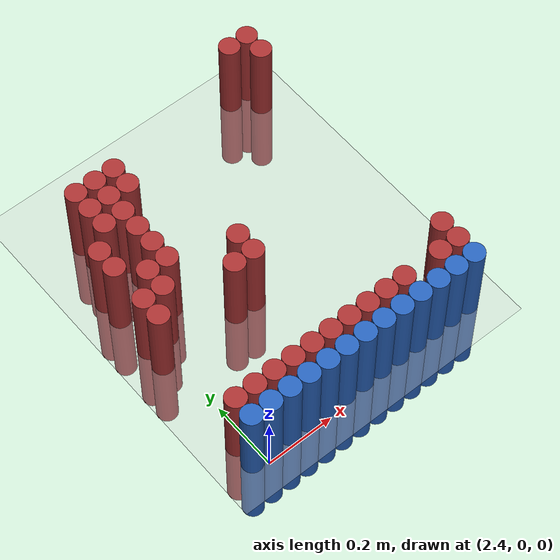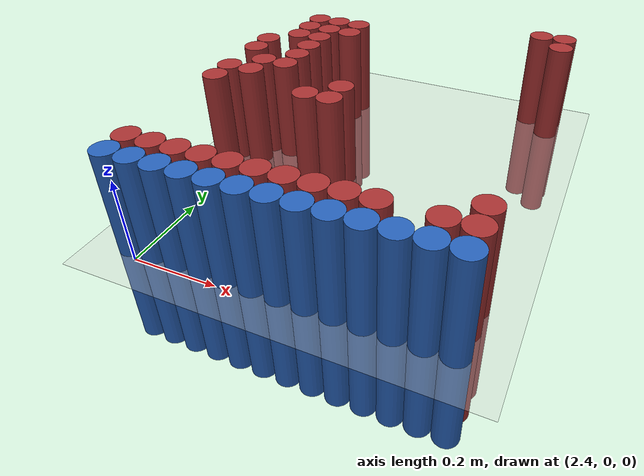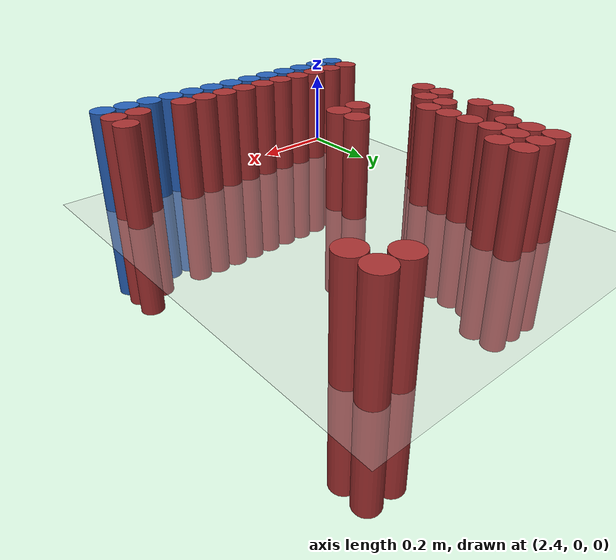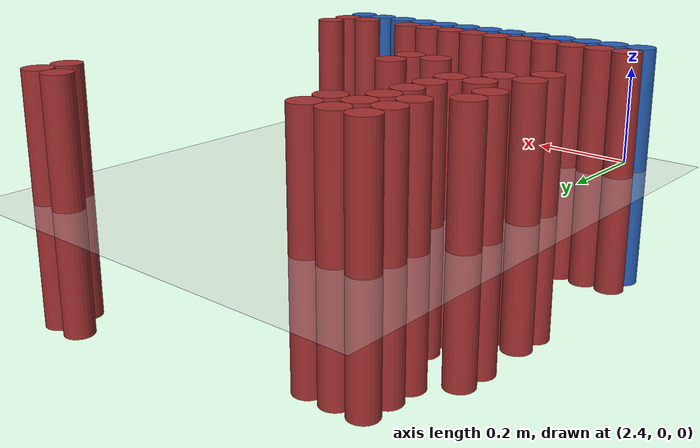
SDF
<sdf version="1.6">
 <world name="default">
  <model name="ground_plane">
   <static>1</static>
   <link name="link">
    <collision name="collision">
     <geometry><plane><normal>0 0 1</normal><size>100 100</size></plane></geometry>
     <surface><friction><ode><mu>100</mu><mu2>50</mu2></ode></friction></surface>
    </collision>
    <visual name="visual">
     <cast_shadows>0</cast_shadows>
     <geometry><plane><normal>0 0 1</normal><size>100 100</size></plane></geometry>
     <material>
      <script><uri>file://media/materials/scripts/gazebo.material</uri><name>Gazebo/Grey</name></script>
     </material>
    </visual>
   </link>
  </model>
  <model name="unit_cylinder_222">
   <static>1</static>
   <pose>3.030000 0.930000 0.000000 0.000000 0.000000 0.000000</pose>
   <link name="link">
    <inertial>
     <mass>1</mass>
     <inertia><ixx>0.145833</ixx><ixy>0</ixy><ixz>0</ixz><iyy>0.145833</iyy><iyz>0</iyz><izz>0.125</izz></inertia>
    </inertial>
    <collision name="collision">
     <geometry><cylinder><radius>0.030000</radius><length>0.5</length></cylinder></geometry>
    </collision>
    <visual name="visual">
     <geometry><cylinder><radius>0.030000</radius><length>0.5</length></cylinder></geometry>
     <material>
      <ambient>0.648000 0.192000 0.192000 1</ambient>
      <diffuse>0.648000 0.192000 0.192000 1</diffuse>
     </material>
     <material>
      <script><name>Gazebo/Grey</name><uri>file://media/materials/scripts/gazebo.material</uri></script>
     </material>
    </visual>
   </link>
  </model>
  <model name="unit_cylinder_223">
   <static>1</static>
   <pose>3.090000 0.930000 0.000000 0.000000 0.000000 0.000000</pose>
   <link name="link">
    <inertial>
     <mass>1</mass>
     <inertia><ixx>0.145833</ixx><ixy>0</ixy><ixz>0</ixz><iyy>0.145833</iyy><iyz>0</iyz><izz>0.125</izz></inertia>
    </inertial>
    <collision name="collision">
     <geometry><cylinder><radius>0.030000</radius><length>0.5</length></cylinder></geometry>
    </collision>
    <visual name="visual">
     <geometry><cylinder><radius>0.030000</radius><length>0.5</length></cylinder></geometry>
     <material>
      <ambient>0.648000 0.192000 0.192000 1</ambient>
      <diffuse>0.648000 0.192000 0.192000 1</diffuse>
     </material>
     <material>
      <script><name>Gazebo/Grey</name><uri>file://media/materials/scripts/gazebo.material</uri></script>
     </material>
    </visual>
   </link>
  </model>
  <model name="unit_cylinder_226">
   <static>1</static>
   <pose>3.090000 0.870000 0.000000 0.000000 0.000000 0.000000</pose>
   <link name="link">
    <inertial>
     <mass>1</mass>
     <inertia><ixx>0.145833</ixx><ixy>0</ixy><ixz>0</ixz><iyy>0.145833</iyy><iyz>0</iyz><izz>0.125</izz></inertia>
    </inertial>
    <collision name="collision">
     <geometry><cylinder><radius>0.030000</radius><length>0.5</length></cylinder></geometry>
    </collision>
    <visual name="visual">
     <geometry><cylinder><radius>0.030000</radius><length>0.5</length></cylinder></geometry>
     <material>
      <ambient>0.648000 0.192000 0.192000 1</ambient>
      <diffuse>0.648000 0.192000 0.192000 1</diffuse>
     </material>
     <material>
      <script><name>Gazebo/Grey</name><uri>file://media/materials/scripts/gazebo.material</uri></script>
     </material>
    </visual>
   </link>
  </model>
  <model name="unit_cylinder_234">
   <static>1</static>
   <pose>2.430000 0.810000 0.000000 0.000000 0.000000 0.000000</pose>
   <link name="link">
    <inertial>
     <mass>1</mass>
     <inertia><ixx>0.145833</ixx><ixy>0</ixy><ixz>0</ixz><iyy>0.145833</iyy><iyz>0</iyz><izz>0.125</izz></inertia>
    </inertial>
    <collision name="collision">
     <geometry><cylinder><radius>0.030000</radius><length>0.5</length></cylinder></geometry>
    </collision>
    <visual name="visual">
     <geometry><cylinder><radius>0.030000</radius><length>0.5</length></cylinder></geometry>
     <material>
      <ambient>0.648000 0.192000 0.192000 1</ambient>
      <diffuse>0.648000 0.192000 0.192000 1</diffuse>
     </material>
     <material>
      <script><name>Gazebo/Grey</name><uri>file://media/materials/scripts/gazebo.material</uri></script>
     </material>
    </visual>
   </link>
  </model>
  <model name="unit_cylinder_235">
   <static>1</static>
   <pose>2.490000 0.810000 0.000000 0.000000 0.000000 0.000000</pose>
   <link name="link">
    <inertial>
     <mass>1</mass>
     <inertia><ixx>0.145833</ixx><ixy>0</ixy><ixz>0</ixz><iyy>0.145833</iyy><iyz>0</iyz><izz>0.125</izz></inertia>
    </inertial>
    <collision name="collision">
     <geometry><cylinder><radius>0.030000</radius><length>0.5</length></cylinder></geometry>
    </collision>
    <visual name="visual">
     <geometry><cylinder><radius>0.030000</radius><length>0.5</length></cylinder></geometry>
     <material>
      <ambient>0.648000 0.192000 0.192000 1</ambient>
      <diffuse>0.648000 0.192000 0.192000 1</diffuse>
     </material>
     <material>
      <script><name>Gazebo/Grey</name><uri>file://media/materials/scripts/gazebo.material</uri></script>
     </material>
    </visual>
   </link>
  </model>
  <model name="unit_cylinder_236">
   <static>1</static>
   <pose>2.550000 0.810000 0.000000 0.000000 0.000000 0.000000</pose>
   <link name="link">
    <inertial>
     <mass>1</mass>
     <inertia><ixx>0.145833</ixx><ixy>0</ixy><ixz>0</ixz><iyy>0.145833</iyy><iyz>0</iyz><izz>0.125</izz></inertia>
    </inertial>
    <collision name="collision">
     <geometry><cylinder><radius>0.030000</radius><length>0.5</length></cylinder></geometry>
    </collision>
    <visual name="visual">
     <geometry><cylinder><radius>0.030000</radius><length>0.5</length></cylinder></geometry>
     <material>
      <ambient>0.648000 0.192000 0.192000 1</ambient>
      <diffuse>0.648000 0.192000 0.192000 1</diffuse>
     </material>
     <material>
      <script><name>Gazebo/Grey</name><uri>file://media/materials/scripts/gazebo.material</uri></script>
     </material>
    </visual>
   </link>
  </model>
  <model name="unit_cylinder_242">
   <static>1</static>
   <pose>2.430000 0.750000 0.000000 0.000000 0.000000 0.000000</pose>
   <link name="link">
    <inertial>
     <mass>1</mass>
     <inertia><ixx>0.145833</ixx><ixy>0</ixy><ixz>0</ixz><iyy>0.145833</iyy><iyz>0</iyz><izz>0.125</izz></inertia>
    </inertial>
    <collision name="collision">
     <geometry><cylinder><radius>0.030000</radius><length>0.5</length></cylinder></geometry>
    </collision>
    <visual name="visual">
     <geometry><cylinder><radius>0.030000</radius><length>0.5</length></cylinder></geometry>
     <material>
      <ambient>0.648000 0.192000 0.192000 1</ambient>
      <diffuse>0.648000 0.192000 0.192000 1</diffuse>
     </material>
     <material>
      <script><name>Gazebo/Grey</name><uri>file://media/materials/scripts/gazebo.material</uri></script>
     </material>
    </visual>
   </link>
  </model>
  <model name="unit_cylinder_243">
   <static>1</static>
   <pose>2.490000 0.750000 0.000000 0.000000 0.000000 0.000000</pose>
   <link name="link">
    <inertial>
     <mass>1</mass>
     <inertia><ixx>0.145833</ixx><ixy>0</ixy><ixz>0</ixz><iyy>0.145833</iyy><iyz>0</iyz><izz>0.125</izz></inertia>
    </inertial>
    <collision name="collision">
     <geometry><cylinder><radius>0.030000</radius><length>0.5</length></cylinder></geometry>
    </collision>
    <visual name="visual">
     <geometry><cylinder><radius>0.030000</radius><length>0.5</length></cylinder></geometry>
     <material>
      <ambient>0.648000 0.192000 0.192000 1</ambient>
      <diffuse>0.648000 0.192000 0.192000 1</diffuse>
     </material>
     <material>
      <script><name>Gazebo/Grey</name><uri>file://media/materials/scripts/gazebo.material</uri></script>
     </material>
    </visual>
   </link>
  </model>
  <model name="unit_cylinder_244">
   <static>1</static>
   <pose>2.550000 0.750000 0.000000 0.000000 0.000000 0.000000</pose>
   <link name="link">
    <inertial>
     <mass>1</mass>
     <inertia><ixx>0.145833</ixx><ixy>0</ixy><ixz>0</ixz><iyy>0.145833</iyy><iyz>0</iyz><izz>0.125</izz></inertia>
    </inertial>
    <collision name="collision">
     <geometry><cylinder><radius>0.030000</radius><length>0.5</length></cylinder></geometry>
    </collision>
    <visual name="visual">
     <geometry><cylinder><radius>0.030000</radius><length>0.5</length></cylinder></geometry>
     <material>
      <ambient>0.648000 0.192000 0.192000 1</ambient>
      <diffuse>0.648000 0.192000 0.192000 1</diffuse>
     </material>
     <material>
      <script><name>Gazebo/Grey</name><uri>file://media/materials/scripts/gazebo.material</uri></script>
     </material>
    </visual>
   </link>
  </model>
  <model name="unit_cylinder_247">
   <static>1</static>
   <pose>2.430000 0.690000 0.000000 0.000000 0.000000 0.000000</pose>
   <link name="link">
    <inertial>
     <mass>1</mass>
     <inertia><ixx>0.145833</ixx><ixy>0</ixy><ixz>0</ixz><iyy>0.145833</iyy><iyz>0</iyz><izz>0.125</izz></inertia>
    </inertial>
    <collision name="collision">
     <geometry><cylinder><radius>0.030000</radius><length>0.5</length></cylinder></geometry>
    </collision>
    <visual name="visual">
     <geometry><cylinder><radius>0.030000</radius><length>0.5</length></cylinder></geometry>
     <material>
      <ambient>0.648000 0.192000 0.192000 1</ambient>
      <diffuse>0.648000 0.192000 0.192000 1</diffuse>
     </material>
     <material>
      <script><name>Gazebo/Grey</name><uri>file://media/materials/scripts/gazebo.material</uri></script>
     </material>
    </visual>
   </link>
  </model>
  <model name="unit_cylinder_248">
   <static>1</static>
   <pose>2.490000 0.690000 0.000000 0.000000 0.000000 0.000000</pose>
   <link name="link">
    <inertial>
     <mass>1</mass>
     <inertia><ixx>0.145833</ixx><ixy>0</ixy><ixz>0</ixz><iyy>0.145833</iyy><iyz>0</iyz><izz>0.125</izz></inertia>
    </inertial>
    <collision name="collision">
     <geometry><cylinder><radius>0.030000</radius><length>0.5</length></cylinder></geometry>
    </collision>
    <visual name="visual">
     <geometry><cylinder><radius>0.030000</radius><length>0.5</length></cylinder></geometry>
     <material>
      <ambient>0.648000 0.192000 0.192000 1</ambient>
      <diffuse>0.648000 0.192000 0.192000 1</diffuse>
     </material>
     <material>
      <script><name>Gazebo/Grey</name><uri>file://media/materials/scripts/gazebo.material</uri></script>
     </material>
    </visual>
   </link>
  </model>
  <model name="unit_cylinder_250">
   <static>1</static>
   <pose>2.370000 0.630000 0.000000 0.000000 0.000000 0.000000</pose>
   <link name="link">
    <inertial>
     <mass>1</mass>
     <inertia><ixx>0.145833</ixx><ixy>0</ixy><ixz>0</ixz><iyy>0.145833</iyy><iyz>0</iyz><izz>0.125</izz></inertia>
    </inertial>
    <collision name="collision">
     <geometry><cylinder><radius>0.030000</radius><length>0.5</length></cylinder></geometry>
    </collision>
    <visual name="visual">
     <geometry><cylinder><radius>0.030000</radius><length>0.5</length></cylinder></geometry>
     <material>
      <ambient>0.648000 0.192000 0.192000 1</ambient>
      <diffuse>0.648000 0.192000 0.192000 1</diffuse>
     </material>
     <material>
      <script><name>Gazebo/Grey</name><uri>file://media/materials/scripts/gazebo.material</uri></script>
     </material>
    </visual>
   </link>
  </model>
  <model name="unit_cylinder_251">
   <static>1</static>
   <pose>2.490000 0.630000 0.000000 0.000000 0.000000 0.000000</pose>
   <link name="link">
    <inertial>
     <mass>1</mass>
     <inertia><ixx>0.145833</ixx><ixy>0</ixy><ixz>0</ixz><iyy>0.145833</iyy><iyz>0</iyz><izz>0.125</izz></inertia>
    </inertial>
    <collision name="collision">
     <geometry><cylinder><radius>0.030000</radius><length>0.5</length></cylinder></geometry>
    </collision>
    <visual name="visual">
     <geometry><cylinder><radius>0.030000</radius><length>0.5</length></cylinder></geometry>
     <material>
      <ambient>0.648000 0.192000 0.192000 1</ambient>
      <diffuse>0.648000 0.192000 0.192000 1</diffuse>
     </material>
     <material>
      <script><name>Gazebo/Grey</name><uri>file://media/materials/scripts/gazebo.material</uri></script>
     </material>
    </visual>
   </link>
  </model>
  <model name="unit_cylinder_254">
   <static>1</static>
   <pose>2.370000 0.570000 0.000000 0.000000 0.000000 0.000000</pose>
   <link name="link">
    <inertial>
     <mass>1</mass>
     <inertia><ixx>0.145833</ixx><ixy>0</ixy><ixz>0</ixz><iyy>0.145833</iyy><iyz>0</iyz><izz>0.125</izz></inertia>
    </inertial>
    <collision name="collision">
     <geometry><cylinder><radius>0.030000</radius><length>0.5</length></cylinder></geometry>
    </collision>
    <visual name="visual">
     <geometry><cylinder><radius>0.030000</radius><length>0.5</length></cylinder></geometry>
     <material>
      <ambient>0.648000 0.192000 0.192000 1</ambient>
      <diffuse>0.648000 0.192000 0.192000 1</diffuse>
     </material>
     <material>
      <script><name>Gazebo/Grey</name><uri>file://media/materials/scripts/gazebo.material</uri></script>
     </material>
    </visual>
   </link>
  </model>
  <model name="unit_cylinder_255">
   <static>1</static>
   <pose>2.490000 0.570000 0.000000 0.000000 0.000000 0.000000</pose>
   <link name="link">
    <inertial>
     <mass>1</mass>
     <inertia><ixx>0.145833</ixx><ixy>0</ixy><ixz>0</ixz><iyy>0.145833</iyy><iyz>0</iyz><izz>0.125</izz></inertia>
    </inertial>
    <collision name="collision">
     <geometry><cylinder><radius>0.030000</radius><length>0.5</length></cylinder></geometry>
    </collision>
    <visual name="visual">
     <geometry><cylinder><radius>0.030000</radius><length>0.5</length></cylinder></geometry>
     <material>
      <ambient>0.648000 0.192000 0.192000 1</ambient>
      <diffuse>0.648000 0.192000 0.192000 1</diffuse>
     </material>
     <material>
      <script><name>Gazebo/Grey</name><uri>file://media/materials/scripts/gazebo.material</uri></script>
     </material>
    </visual>
   </link>
  </model>
  <model name="unit_cylinder_265">
   <static>1</static>
   <pose>2.430000 0.510000 0.000000 0.000000 0.000000 0.000000</pose>
   <link name="link">
    <inertial>
     <mass>1</mass>
     <inertia><ixx>0.145833</ixx><ixy>0</ixy><ixz>0</ixz><iyy>0.145833</iyy><iyz>0</iyz><izz>0.125</izz></inertia>
    </inertial>
    <collision name="collision">
     <geometry><cylinder><radius>0.030000</radius><length>0.5</length></cylinder></geometry>
    </collision>
    <visual name="visual">
     <geometry><cylinder><radius>0.030000</radius><length>0.5</length></cylinder></geometry>
     <material>
      <ambient>0.648000 0.192000 0.192000 1</ambient>
      <diffuse>0.648000 0.192000 0.192000 1</diffuse>
     </material>
     <material>
      <script><name>Gazebo/Grey</name><uri>file://media/materials/scripts/gazebo.material</uri></script>
     </material>
    </visual>
   </link>
  </model>
  <model name="unit_cylinder_266">
   <static>1</static>
   <pose>2.490000 0.510000 0.000000 0.000000 0.000000 0.000000</pose>
   <link name="link">
    <inertial>
     <mass>1</mass>
     <inertia><ixx>0.145833</ixx><ixy>0</ixy><ixz>0</ixz><iyy>0.145833</iyy><iyz>0</iyz><izz>0.125</izz></inertia>
    </inertial>
    <collision name="collision">
     <geometry><cylinder><radius>0.030000</radius><length>0.5</length></cylinder></geometry>
    </collision>
    <visual name="visual">
     <geometry><cylinder><radius>0.030000</radius><length>0.5</length></cylinder></geometry>
     <material>
      <ambient>0.648000 0.192000 0.192000 1</ambient>
      <diffuse>0.648000 0.192000 0.192000 1</diffuse>
     </material>
     <material>
      <script><name>Gazebo/Grey</name><uri>file://media/materials/scripts/gazebo.material</uri></script>
     </material>
    </visual>
   </link>
  </model>
  <model name="unit_cylinder_272">
   <static>1</static>
   <pose>2.370000 0.450000 0.000000 0.000000 0.000000 0.000000</pose>
   <link name="link">
    <inertial>
     <mass>1</mass>
     <inertia><ixx>0.145833</ixx><ixy>0</ixy><ixz>0</ixz><iyy>0.145833</iyy><iyz>0</iyz><izz>0.125</izz></inertia>
    </inertial>
    <collision name="collision">
     <geometry><cylinder><radius>0.030000</radius><length>0.5</length></cylinder></geometry>
    </collision>
    <visual name="visual">
     <geometry><cylinder><radius>0.030000</radius><length>0.5</length></cylinder></geometry>
     <material>
      <ambient>0.648000 0.192000 0.192000 1</ambient>
      <diffuse>0.648000 0.192000 0.192000 1</diffuse>
     </material>
     <material>
      <script><name>Gazebo/Grey</name><uri>file://media/materials/scripts/gazebo.material</uri></script>
     </material>
    </visual>
   </link>
  </model>
  <model name="unit_cylinder_273">
   <static>1</static>
   <pose>2.430000 0.450000 0.000000 0.000000 0.000000 0.000000</pose>
   <link name="link">
    <inertial>
     <mass>1</mass>
     <inertia><ixx>0.145833</ixx><ixy>0</ixy><ixz>0</ixz><iyy>0.145833</iyy><iyz>0</iyz><izz>0.125</izz></inertia>
    </inertial>
    <collision name="collision">
     <geometry><cylinder><radius>0.030000</radius><length>0.5</length></cylinder></geometry>
    </collision>
    <visual name="visual">
     <geometry><cylinder><radius>0.030000</radius><length>0.5</length></cylinder></geometry>
     <material>
      <ambient>0.648000 0.192000 0.192000 1</ambient>
      <diffuse>0.648000 0.192000 0.192000 1</diffuse>
     </material>
     <material>
      <script><name>Gazebo/Grey</name><uri>file://media/materials/scripts/gazebo.material</uri></script>
     </material>
    </visual>
   </link>
  </model>
  <model name="unit_cylinder_274">
   <static>1</static>
   <pose>2.670000 0.450000 0.000000 0.000000 0.000000 0.000000</pose>
   <link name="link">
    <inertial>
     <mass>1</mass>
     <inertia><ixx>0.145833</ixx><ixy>0</ixy><ixz>0</ixz><iyy>0.145833</iyy><iyz>0</iyz><izz>0.125</izz></inertia>
    </inertial>
    <collision name="collision">
     <geometry><cylinder><radius>0.030000</radius><length>0.5</length></cylinder></geometry>
    </collision>
    <visual name="visual">
     <geometry><cylinder><radius>0.030000</radius><length>0.5</length></cylinder></geometry>
     <material>
      <ambient>0.648000 0.192000 0.192000 1</ambient>
      <diffuse>0.648000 0.192000 0.192000 1</diffuse>
     </material>
     <material>
      <script><name>Gazebo/Grey</name><uri>file://media/materials/scripts/gazebo.material</uri></script>
     </material>
    </visual>
   </link>
  </model>
  <model name="unit_cylinder_277">
   <static>1</static>
   <pose>2.370000 0.390000 0.000000 0.000000 0.000000 0.000000</pose>
   <link name="link">
    <inertial>
     <mass>1</mass>
     <inertia><ixx>0.145833</ixx><ixy>0</ixy><ixz>0</ixz><iyy>0.145833</iyy><iyz>0</iyz><izz>0.125</izz></inertia>
    </inertial>
    <collision name="collision">
     <geometry><cylinder><radius>0.030000</radius><length>0.5</length></cylinder></geometry>
    </collision>
    <visual name="visual">
     <geometry><cylinder><radius>0.030000</radius><length>0.5</length></cylinder></geometry>
     <material>
      <ambient>0.648000 0.192000 0.192000 1</ambient>
      <diffuse>0.648000 0.192000 0.192000 1</diffuse>
     </material>
     <material>
      <script><name>Gazebo/Grey</name><uri>file://media/materials/scripts/gazebo.material</uri></script>
     </material>
    </visual>
   </link>
  </model>
  <model name="unit_cylinder_278">
   <static>1</static>
   <pose>2.610000 0.390000 0.000000 0.000000 0.000000 0.000000</pose>
   <link name="link">
    <inertial>
     <mass>1</mass>
     <inertia><ixx>0.145833</ixx><ixy>0</ixy><ixz>0</ixz><iyy>0.145833</iyy><iyz>0</iyz><izz>0.125</izz></inertia>
    </inertial>
    <collision name="collision">
     <geometry><cylinder><radius>0.030000</radius><length>0.5</length></cylinder></geometry>
    </collision>
    <visual name="visual">
     <geometry><cylinder><radius>0.030000</radius><length>0.5</length></cylinder></geometry>
     <material>
      <ambient>0.648000 0.192000 0.192000 1</ambient>
      <diffuse>0.648000 0.192000 0.192000 1</diffuse>
     </material>
     <material>
      <script><name>Gazebo/Grey</name><uri>file://media/materials/scripts/gazebo.material</uri></script>
     </material>
    </visual>
   </link>
  </model>
  <model name="unit_cylinder_279">
   <static>1</static>
   <pose>2.670000 0.390000 0.000000 0.000000 0.000000 0.000000</pose>
   <link name="link">
    <inertial>
     <mass>1</mass>
     <inertia><ixx>0.145833</ixx><ixy>0</ixy><ixz>0</ixz><iyy>0.145833</iyy><iyz>0</iyz><izz>0.125</izz></inertia>
    </inertial>
    <collision name="collision">
     <geometry><cylinder><radius>0.030000</radius><length>0.5</length></cylinder></geometry>
    </collision>
    <visual name="visual">
     <geometry><cylinder><radius>0.030000</radius><length>0.5</length></cylinder></geometry>
     <material>
      <ambient>0.648000 0.192000 0.192000 1</ambient>
      <diffuse>0.648000 0.192000 0.192000 1</diffuse>
     </material>
     <material>
      <script><name>Gazebo/Grey</name><uri>file://media/materials/scripts/gazebo.material</uri></script>
     </material>
    </visual>
   </link>
  </model>
  <model name="unit_cylinder_289">
   <static>1</static>
   <pose>3.090000 0.150000 0.000000 0.000000 0.000000 0.000000</pose>
   <link name="link">
    <inertial>
     <mass>1</mass>
     <inertia><ixx>0.145833</ixx><ixy>0</ixy><ixz>0</ixz><iyy>0.145833</iyy><iyz>0</iyz><izz>0.125</izz></inertia>
    </inertial>
    <collision name="collision">
     <geometry><cylinder><radius>0.030000</radius><length>0.5</length></cylinder></geometry>
    </collision>
    <visual name="visual">
     <geometry><cylinder><radius>0.030000</radius><length>0.5</length></cylinder></geometry>
     <material>
      <ambient>0.648000 0.192000 0.192000 1</ambient>
      <diffuse>0.648000 0.192000 0.192000 1</diffuse>
     </material>
     <material>
      <script><name>Gazebo/Grey</name><uri>file://media/materials/scripts/gazebo.material</uri></script>
     </material>
    </visual>
   </link>
  </model>
  <model name="unit_cylinder_297">
   <static>1</static>
   <pose>2.370000 0.090000 0.000000 0.000000 0.000000 0.000000</pose>
   <link name="link">
    <inertial>
     <mass>1</mass>
     <inertia><ixx>0.145833</ixx><ixy>0</ixy><ixz>0</ixz><iyy>0.145833</iyy><iyz>0</iyz><izz>0.125</izz></inertia>
    </inertial>
    <collision name="collision">
     <geometry><cylinder><radius>0.030000</radius><length>0.5</length></cylinder></geometry>
    </collision>
    <visual name="visual">
     <geometry><cylinder><radius>0.030000</radius><length>0.5</length></cylinder></geometry>
     <material>
      <ambient>0.648000 0.192000 0.192000 1</ambient>
      <diffuse>0.648000 0.192000 0.192000 1</diffuse>
     </material>
     <material>
      <script><name>Gazebo/Grey</name><uri>file://media/materials/scripts/gazebo.material</uri></script>
     </material>
    </visual>
   </link>
  </model>
  <model name="unit_cylinder_298">
   <static>1</static>
   <pose>2.430000 0.090000 0.000000 0.000000 0.000000 0.000000</pose>
   <link name="link">
    <inertial>
     <mass>1</mass>
     <inertia><ixx>0.145833</ixx><ixy>0</ixy><ixz>0</ixz><iyy>0.145833</iyy><iyz>0</iyz><izz>0.125</izz></inertia>
    </inertial>
    <collision name="collision">
     <geometry><cylinder><radius>0.030000</radius><length>0.5</length></cylinder></geometry>
    </collision>
    <visual name="visual">
     <geometry><cylinder><radius>0.030000</radius><length>0.5</length></cylinder></geometry>
     <material>
      <ambient>0.648000 0.192000 0.192000 1</ambient>
      <diffuse>0.648000 0.192000 0.192000 1</diffuse>
     </material>
     <material>
      <script><name>Gazebo/Grey</name><uri>file://media/materials/scripts/gazebo.material</uri></script>
     </material>
    </visual>
   </link>
  </model>
  <model name="unit_cylinder_299">
   <static>1</static>
   <pose>2.490000 0.090000 0.000000 0.000000 0.000000 0.000000</pose>
   <link name="link">
    <inertial>
     <mass>1</mass>
     <inertia><ixx>0.145833</ixx><ixy>0</ixy><ixz>0</ixz><iyy>0.145833</iyy><iyz>0</iyz><izz>0.125</izz></inertia>
    </inertial>
    <collision name="collision">
     <geometry><cylinder><radius>0.030000</radius><length>0.5</length></cylinder></geometry>
    </collision>
    <visual name="visual">
     <geometry><cylinder><radius>0.030000</radius><length>0.5</length></cylinder></geometry>
     <material>
      <ambient>0.648000 0.192000 0.192000 1</ambient>
      <diffuse>0.648000 0.192000 0.192000 1</diffuse>
     </material>
     <material>
      <script><name>Gazebo/Grey</name><uri>file://media/materials/scripts/gazebo.material</uri></script>
     </material>
    </visual>
   </link>
  </model>
  <model name="unit_cylinder_300">
   <static>1</static>
   <pose>2.550000 0.090000 0.000000 0.000000 0.000000 0.000000</pose>
   <link name="link">
    <inertial>
     <mass>1</mass>
     <inertia><ixx>0.145833</ixx><ixy>0</ixy><ixz>0</ixz><iyy>0.145833</iyy><iyz>0</iyz><izz>0.125</izz></inertia>
    </inertial>
    <collision name="collision">
     <geometry><cylinder><radius>0.030000</radius><length>0.5</length></cylinder></geometry>
    </collision>
    <visual name="visual">
     <geometry><cylinder><radius>0.030000</radius><length>0.5</length></cylinder></geometry>
     <material>
      <ambient>0.648000 0.192000 0.192000 1</ambient>
      <diffuse>0.648000 0.192000 0.192000 1</diffuse>
     </material>
     <material>
      <script><name>Gazebo/Grey</name><uri>file://media/materials/scripts/gazebo.material</uri></script>
     </material>
    </visual>
   </link>
  </model>
  <model name="unit_cylinder_301">
   <static>1</static>
   <pose>2.610000 0.090000 0.000000 0.000000 0.000000 0.000000</pose>
   <link name="link">
    <inertial>
     <mass>1</mass>
     <inertia><ixx>0.145833</ixx><ixy>0</ixy><ixz>0</ixz><iyy>0.145833</iyy><iyz>0</iyz><izz>0.125</izz></inertia>
    </inertial>
    <collision name="collision">
     <geometry><cylinder><radius>0.030000</radius><length>0.5</length></cylinder></geometry>
    </collision>
    <visual name="visual">
     <geometry><cylinder><radius>0.030000</radius><length>0.5</length></cylinder></geometry>
     <material>
      <ambient>0.648000 0.192000 0.192000 1</ambient>
      <diffuse>0.648000 0.192000 0.192000 1</diffuse>
     </material>
     <material>
      <script><name>Gazebo/Grey</name><uri>file://media/materials/scripts/gazebo.material</uri></script>
     </material>
    </visual>
   </link>
  </model>
  <model name="unit_cylinder_302">
   <static>1</static>
   <pose>2.670000 0.090000 0.000000 0.000000 0.000000 0.000000</pose>
   <link name="link">
    <inertial>
     <mass>1</mass>
     <inertia><ixx>0.145833</ixx><ixy>0</ixy><ixz>0</ixz><iyy>0.145833</iyy><iyz>0</iyz><izz>0.125</izz></inertia>
    </inertial>
    <collision name="collision">
     <geometry><cylinder><radius>0.030000</radius><length>0.5</length></cylinder></geometry>
    </collision>
    <visual name="visual">
     <geometry><cylinder><radius>0.030000</radius><length>0.5</length></cylinder></geometry>
     <material>
      <ambient>0.648000 0.192000 0.192000 1</ambient>
      <diffuse>0.648000 0.192000 0.192000 1</diffuse>
     </material>
     <material>
      <script><name>Gazebo/Grey</name><uri>file://media/materials/scripts/gazebo.material</uri></script>
     </material>
    </visual>
   </link>
  </model>
  <model name="unit_cylinder_303">
   <static>1</static>
   <pose>2.730000 0.090000 0.000000 0.000000 0.000000 0.000000</pose>
   <link name="link">
    <inertial>
     <mass>1</mass>
     <inertia><ixx>0.145833</ixx><ixy>0</ixy><ixz>0</ixz><iyy>0.145833</iyy><iyz>0</iyz><izz>0.125</izz></inertia>
    </inertial>
    <collision name="collision">
     <geometry><cylinder><radius>0.030000</radius><length>0.5</length></cylinder></geometry>
    </collision>
    <visual name="visual">
     <geometry><cylinder><radius>0.030000</radius><length>0.5</length></cylinder></geometry>
     <material>
      <ambient>0.648000 0.192000 0.192000 1</ambient>
      <diffuse>0.648000 0.192000 0.192000 1</diffuse>
     </material>
     <material>
      <script><name>Gazebo/Grey</name><uri>file://media/materials/scripts/gazebo.material</uri></script>
     </material>
    </visual>
   </link>
  </model>
  <model name="unit_cylinder_304">
   <static>1</static>
   <pose>2.790000 0.090000 0.000000 0.000000 0.000000 0.000000</pose>
   <link name="link">
    <inertial>
     <mass>1</mass>
     <inertia><ixx>0.145833</ixx><ixy>0</ixy><ixz>0</ixz><iyy>0.145833</iyy><iyz>0</iyz><izz>0.125</izz></inertia>
    </inertial>
    <collision name="collision">
     <geometry><cylinder><radius>0.030000</radius><length>0.5</length></cylinder></geometry>
    </collision>
    <visual name="visual">
     <geometry><cylinder><radius>0.030000</radius><length>0.5</length></cylinder></geometry>
     <material>
      <ambient>0.648000 0.192000 0.192000 1</ambient>
      <diffuse>0.648000 0.192000 0.192000 1</diffuse>
     </material>
     <material>
      <script><name>Gazebo/Grey</name><uri>file://media/materials/scripts/gazebo.material</uri></script>
     </material>
    </visual>
   </link>
  </model>
  <model name="unit_cylinder_305">
   <static>1</static>
   <pose>2.850000 0.090000 0.000000 0.000000 0.000000 0.000000</pose>
   <link name="link">
    <inertial>
     <mass>1</mass>
     <inertia><ixx>0.145833</ixx><ixy>0</ixy><ixz>0</ixz><iyy>0.145833</iyy><iyz>0</iyz><izz>0.125</izz></inertia>
    </inertial>
    <collision name="collision">
     <geometry><cylinder><radius>0.030000</radius><length>0.5</length></cylinder></geometry>
    </collision>
    <visual name="visual">
     <geometry><cylinder><radius>0.030000</radius><length>0.5</length></cylinder></geometry>
     <material>
      <ambient>0.648000 0.192000 0.192000 1</ambient>
      <diffuse>0.648000 0.192000 0.192000 1</diffuse>
     </material>
     <material>
      <script><name>Gazebo/Grey</name><uri>file://media/materials/scripts/gazebo.material</uri></script>
     </material>
    </visual>
   </link>
  </model>
  <model name="unit_cylinder_306">
   <static>1</static>
   <pose>2.910000 0.090000 0.000000 0.000000 0.000000 0.000000</pose>
   <link name="link">
    <inertial>
     <mass>1</mass>
     <inertia><ixx>0.145833</ixx><ixy>0</ixy><ixz>0</ixz><iyy>0.145833</iyy><iyz>0</iyz><izz>0.125</izz></inertia>
    </inertial>
    <collision name="collision">
     <geometry><cylinder><radius>0.030000</radius><length>0.5</length></cylinder></geometry>
    </collision>
    <visual name="visual">
     <geometry><cylinder><radius>0.030000</radius><length>0.5</length></cylinder></geometry>
     <material>
      <ambient>0.648000 0.192000 0.192000 1</ambient>
      <diffuse>0.648000 0.192000 0.192000 1</diffuse>
     </material>
     <material>
      <script><name>Gazebo/Grey</name><uri>file://media/materials/scripts/gazebo.material</uri></script>
     </material>
    </visual>
   </link>
  </model>
  <model name="unit_cylinder_307">
   <static>1</static>
   <pose>3.030000 0.090000 0.000000 0.000000 0.000000 0.000000</pose>
   <link name="link">
    <inertial>
     <mass>1</mass>
     <inertia><ixx>0.145833</ixx><ixy>0</ixy><ixz>0</ixz><iyy>0.145833</iyy><iyz>0</iyz><izz>0.125</izz></inertia>
    </inertial>
    <collision name="collision">
     <geometry><cylinder><radius>0.030000</radius><length>0.5</length></cylinder></geometry>
    </collision>
    <visual name="visual">
     <geometry><cylinder><radius>0.030000</radius><length>0.5</length></cylinder></geometry>
     <material>
      <ambient>0.648000 0.192000 0.192000 1</ambient>
      <diffuse>0.648000 0.192000 0.192000 1</diffuse>
     </material>
     <material>
      <script><name>Gazebo/Grey</name><uri>file://media/materials/scripts/gazebo.material</uri></script>
     </material>
    </visual>
   </link>
  </model>
  <model name="unit_cylinder_308">
   <static>1</static>
   <pose>3.090000 0.090000 0.000000 0.000000 0.000000 0.000000</pose>
   <link name="link">
    <inertial>
     <mass>1</mass>
     <inertia><ixx>0.145833</ixx><ixy>0</ixy><ixz>0</ixz><iyy>0.145833</iyy><iyz>0</iyz><izz>0.125</izz></inertia>
    </inertial>
    <collision name="collision">
     <geometry><cylinder><radius>0.030000</radius><length>0.5</length></cylinder></geometry>
    </collision>
    <visual name="visual">
     <geometry><cylinder><radius>0.030000</radius><length>0.5</length></cylinder></geometry>
     <material>
      <ambient>0.648000 0.192000 0.192000 1</ambient>
      <diffuse>0.648000 0.192000 0.192000 1</diffuse>
     </material>
     <material>
      <script><name>Gazebo/Grey</name><uri>file://media/materials/scripts/gazebo.material</uri></script>
     </material>
    </visual>
   </link>
  </model>
  <model name="unit_cylinder_322">
   <static>1</static>
   <pose>2.370000 0.030000 0.000000 0.000000 0.000000 0.000000</pose>
   <link name="link">
    <inertial>
     <mass>1</mass>
     <inertia><ixx>0.145833</ixx><ixy>0</ixy><ixz>0</ixz><iyy>0.145833</iyy><iyz>0</iyz><izz>0.125</izz></inertia>
    </inertial>
    <collision name="collision">
     <geometry><cylinder><radius>0.030000</radius><length>0.5</length></cylinder></geometry>
    </collision>
    <visual name="visual">
     <geometry><cylinder><radius>0.030000</radius><length>0.5</length></cylinder></geometry>
     <material>
      <ambient>0.152000 0.379000 0.720000 1</ambient>
      <diffuse>0.152000 0.379000 0.720000 1</diffuse>
     </material>
     <material>
      <script><name>Gazebo/Grey</name><uri>file://media/materials/scripts/gazebo.material</uri></script>
     </material>
    </visual>
   </link>
  </model>
  <model name="unit_cylinder_323">
   <static>1</static>
   <pose>2.430000 0.030000 0.000000 0.000000 0.000000 0.000000</pose>
   <link name="link">
    <inertial>
     <mass>1</mass>
     <inertia><ixx>0.145833</ixx><ixy>0</ixy><ixz>0</ixz><iyy>0.145833</iyy><iyz>0</iyz><izz>0.125</izz></inertia>
    </inertial>
    <collision name="collision">
     <geometry><cylinder><radius>0.030000</radius><length>0.5</length></cylinder></geometry>
    </collision>
    <visual name="visual">
     <geometry><cylinder><radius>0.030000</radius><length>0.5</length></cylinder></geometry>
     <material>
      <ambient>0.152000 0.379000 0.720000 1</ambient>
      <diffuse>0.152000 0.379000 0.720000 1</diffuse>
     </material>
     <material>
      <script><name>Gazebo/Grey</name><uri>file://media/materials/scripts/gazebo.material</uri></script>
     </material>
    </visual>
   </link>
  </model>
  <model name="unit_cylinder_324">
   <static>1</static>
   <pose>2.490000 0.030000 0.000000 0.000000 0.000000 0.000000</pose>
   <link name="link">
    <inertial>
     <mass>1</mass>
     <inertia><ixx>0.145833</ixx><ixy>0</ixy><ixz>0</ixz><iyy>0.145833</iyy><iyz>0</iyz><izz>0.125</izz></inertia>
    </inertial>
    <collision name="collision">
     <geometry><cylinder><radius>0.030000</radius><length>0.5</length></cylinder></geometry>
    </collision>
    <visual name="visual">
     <geometry><cylinder><radius>0.030000</radius><length>0.5</length></cylinder></geometry>
     <material>
      <ambient>0.152000 0.379000 0.720000 1</ambient>
      <diffuse>0.152000 0.379000 0.720000 1</diffuse>
     </material>
     <material>
      <script><name>Gazebo/Grey</name><uri>file://media/materials/scripts/gazebo.material</uri></script>
     </material>
    </visual>
   </link>
  </model>
  <model name="unit_cylinder_325">
   <static>1</static>
   <pose>2.550000 0.030000 0.000000 0.000000 0.000000 0.000000</pose>
   <link name="link">
    <inertial>
     <mass>1</mass>
     <inertia><ixx>0.145833</ixx><ixy>0</ixy><ixz>0</ixz><iyy>0.145833</iyy><iyz>0</iyz><izz>0.125</izz></inertia>
    </inertial>
    <collision name="collision">
     <geometry><cylinder><radius>0.030000</radius><length>0.5</length></cylinder></geometry>
    </collision>
    <visual name="visual">
     <geometry><cylinder><radius>0.030000</radius><length>0.5</length></cylinder></geometry>
     <material>
      <ambient>0.152000 0.379000 0.720000 1</ambient>
      <diffuse>0.152000 0.379000 0.720000 1</diffuse>
     </material>
     <material>
      <script><name>Gazebo/Grey</name><uri>file://media/materials/scripts/gazebo.material</uri></script>
     </material>
    </visual>
   </link>
  </model>
  <model name="unit_cylinder_326">
   <static>1</static>
   <pose>2.610000 0.030000 0.000000 0.000000 0.000000 0.000000</pose>
   <link name="link">
    <inertial>
     <mass>1</mass>
     <inertia><ixx>0.145833</ixx><ixy>0</ixy><ixz>0</ixz><iyy>0.145833</iyy><iyz>0</iyz><izz>0.125</izz></inertia>
    </inertial>
    <collision name="collision">
     <geometry><cylinder><radius>0.030000</radius><length>0.5</length></cylinder></geometry>
    </collision>
    <visual name="visual">
     <geometry><cylinder><radius>0.030000</radius><length>0.5</length></cylinder></geometry>
     <material>
      <ambient>0.152000 0.379000 0.720000 1</ambient>
      <diffuse>0.152000 0.379000 0.720000 1</diffuse>
     </material>
     <material>
      <script><name>Gazebo/Grey</name><uri>file://media/materials/scripts/gazebo.material</uri></script>
     </material>
    </visual>
   </link>
  </model>
  <model name="unit_cylinder_327">
   <static>1</static>
   <pose>2.670000 0.030000 0.000000 0.000000 0.000000 0.000000</pose>
   <link name="link">
    <inertial>
     <mass>1</mass>
     <inertia><ixx>0.145833</ixx><ixy>0</ixy><ixz>0</ixz><iyy>0.145833</iyy><iyz>0</iyz><izz>0.125</izz></inertia>
    </inertial>
    <collision name="collision">
     <geometry><cylinder><radius>0.030000</radius><length>0.5</length></cylinder></geometry>
    </collision>
    <visual name="visual">
     <geometry><cylinder><radius>0.030000</radius><length>0.5</length></cylinder></geometry>
     <material>
      <ambient>0.152000 0.379000 0.720000 1</ambient>
      <diffuse>0.152000 0.379000 0.720000 1</diffuse>
     </material>
     <material>
      <script><name>Gazebo/Grey</name><uri>file://media/materials/scripts/gazebo.material</uri></script>
     </material>
    </visual>
   </link>
  </model>
  <model name="unit_cylinder_328">
   <static>1</static>
   <pose>2.730000 0.030000 0.000000 0.000000 0.000000 0.000000</pose>
   <link name="link">
    <inertial>
     <mass>1</mass>
     <inertia><ixx>0.145833</ixx><ixy>0</ixy><ixz>0</ixz><iyy>0.145833</iyy><iyz>0</iyz><izz>0.125</izz></inertia>
    </inertial>
    <collision name="collision">
     <geometry><cylinder><radius>0.030000</radius><length>0.5</length></cylinder></geometry>
    </collision>
    <visual name="visual">
     <geometry><cylinder><radius>0.030000</radius><length>0.5</length></cylinder></geometry>
     <material>
      <ambient>0.152000 0.379000 0.720000 1</ambient>
      <diffuse>0.152000 0.379000 0.720000 1</diffuse>
     </material>
     <material>
      <script><name>Gazebo/Grey</name><uri>file://media/materials/scripts/gazebo.material</uri></script>
     </material>
    </visual>
   </link>
  </model>
  <model name="unit_cylinder_329">
   <static>1</static>
   <pose>2.790000 0.030000 0.000000 0.000000 0.000000 0.000000</pose>
   <link name="link">
    <inertial>
     <mass>1</mass>
     <inertia><ixx>0.145833</ixx><ixy>0</ixy><ixz>0</ixz><iyy>0.145833</iyy><iyz>0</iyz><izz>0.125</izz></inertia>
    </inertial>
    <collision name="collision">
     <geometry><cylinder><radius>0.030000</radius><length>0.5</length></cylinder></geometry>
    </collision>
    <visual name="visual">
     <geometry><cylinder><radius>0.030000</radius><length>0.5</length></cylinder></geometry>
     <material>
      <ambient>0.152000 0.379000 0.720000 1</ambient>
      <diffuse>0.152000 0.379000 0.720000 1</diffuse>
     </material>
     <material>
      <script><name>Gazebo/Grey</name><uri>file://media/materials/scripts/gazebo.material</uri></script>
     </material>
    </visual>
   </link>
  </model>
  <model name="unit_cylinder_330">
   <static>1</static>
   <pose>2.850000 0.030000 0.000000 0.000000 0.000000 0.000000</pose>
   <link name="link">
    <inertial>
     <mass>1</mass>
     <inertia><ixx>0.145833</ixx><ixy>0</ixy><ixz>0</ixz><iyy>0.145833</iyy><iyz>0</iyz><izz>0.125</izz></inertia>
    </inertial>
    <collision name="collision">
     <geometry><cylinder><radius>0.030000</radius><length>0.5</length></cylinder></geometry>
    </collision>
    <visual name="visual">
     <geometry><cylinder><radius>0.030000</radius><length>0.5</length></cylinder></geometry>
     <material>
      <ambient>0.152000 0.379000 0.720000 1</ambient>
      <diffuse>0.152000 0.379000 0.720000 1</diffuse>
     </material>
     <material>
      <script><name>Gazebo/Grey</name><uri>file://media/materials/scripts/gazebo.material</uri></script>
     </material>
    </visual>
   </link>
  </model>
  <model name="unit_cylinder_331">
   <static>1</static>
   <pose>2.910000 0.030000 0.000000 0.000000 0.000000 0.000000</pose>
   <link name="link">
    <inertial>
     <mass>1</mass>
     <inertia><ixx>0.145833</ixx><ixy>0</ixy><ixz>0</ixz><iyy>0.145833</iyy><iyz>0</iyz><izz>0.125</izz></inertia>
    </inertial>
    <collision name="collision">
     <geometry><cylinder><radius>0.030000</radius><length>0.5</length></cylinder></geometry>
    </collision>
    <visual name="visual">
     <geometry><cylinder><radius>0.030000</radius><length>0.5</length></cylinder></geometry>
     <material>
      <ambient>0.152000 0.379000 0.720000 1</ambient>
      <diffuse>0.152000 0.379000 0.720000 1</diffuse>
     </material>
     <material>
      <script><name>Gazebo/Grey</name><uri>file://media/materials/scripts/gazebo.material</uri></script>
     </material>
    </visual>
   </link>
  </model>
  <model name="unit_cylinder_332">
   <static>1</static>
   <pose>2.970000 0.030000 0.000000 0.000000 0.000000 0.000000</pose>
   <link name="link">
    <inertial>
     <mass>1</mass>
     <inertia><ixx>0.145833</ixx><ixy>0</ixy><ixz>0</ixz><iyy>0.145833</iyy><iyz>0</iyz><izz>0.125</izz></inertia>
    </inertial>
    <collision name="collision">
     <geometry><cylinder><radius>0.030000</radius><length>0.5</length></cylinder></geometry>
    </collision>
    <visual name="visual">
     <geometry><cylinder><radius>0.030000</radius><length>0.5</length></cylinder></geometry>
     <material>
      <ambient>0.152000 0.379000 0.720000 1</ambient>
      <diffuse>0.152000 0.379000 0.720000 1</diffuse>
     </material>
     <material>
      <script><name>Gazebo/Grey</name><uri>file://media/materials/scripts/gazebo.material</uri></script>
     </material>
    </visual>
   </link>
  </model>
  <model name="unit_cylinder_333">
   <static>1</static>
   <pose>3.030000 0.030000 0.000000 0.000000 0.000000 0.000000</pose>
   <link name="link">
    <inertial>
     <mass>1</mass>
     <inertia><ixx>0.145833</ixx><ixy>0</ixy><ixz>0</ixz><iyy>0.145833</iyy><iyz>0</iyz><izz>0.125</izz></inertia>
    </inertial>
    <collision name="collision">
     <geometry><cylinder><radius>0.030000</radius><length>0.5</length></cylinder></geometry>
    </collision>
    <visual name="visual">
     <geometry><cylinder><radius>0.030000</radius><length>0.5</length></cylinder></geometry>
     <material>
      <ambient>0.152000 0.379000 0.720000 1</ambient>
      <diffuse>0.152000 0.379000 0.720000 1</diffuse>
     </material>
     <material>
      <script><name>Gazebo/Grey</name><uri>file://media/materials/scripts/gazebo.material</uri></script>
     </material>
    </visual>
   </link>
  </model>
  <model name="unit_cylinder_334">
   <static>1</static>
   <pose>3.090000 0.030000 0.000000 0.000000 0.000000 0.000000</pose>
   <link name="link">
    <inertial>
     <mass>1</mass>
     <inertia><ixx>0.145833</ixx><ixy>0</ixy><ixz>0</ixz><iyy>0.145833</iyy><iyz>0</iyz><izz>0.125</izz></inertia>
    </inertial>
    <collision name="collision">
     <geometry><cylinder><radius>0.030000</radius><length>0.5</length></cylinder></geometry>
    </collision>
    <visual name="visual">
     <geometry><cylinder><radius>0.030000</radius><length>0.5</length></cylinder></geometry>
     <material>
      <ambient>0.152000 0.379000 0.720000 1</ambient>
      <diffuse>0.152000 0.379000 0.720000 1</diffuse>
     </material>
     <material>
      <script><name>Gazebo/Grey</name><uri>file://media/materials/scripts/gazebo.material</uri></script>
     </material>
    </visual>
   </link>
  </model>
 </world>
</sdf>
